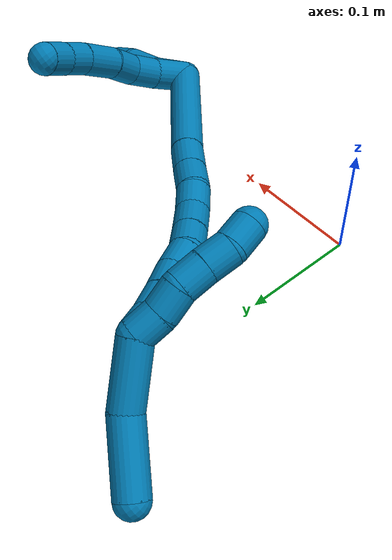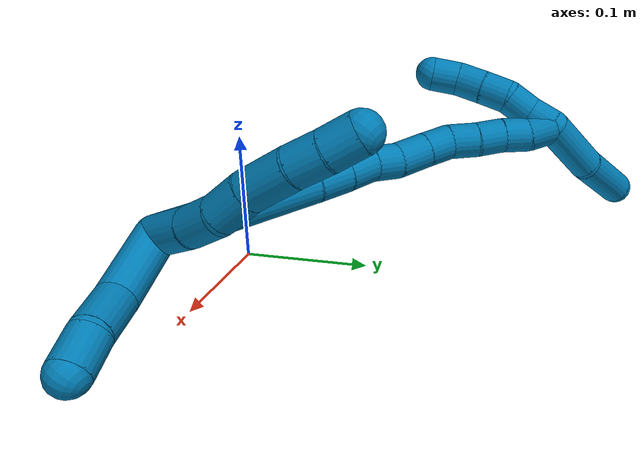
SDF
<sdf version="1.7">
 <world name="default">
  <model name="9">
   <static>0</static>
   <link name="9">
    <collision name="collision-cylinder-e_1_2_8">
     <pose>0.005752 0.010051 -0.010643 -2.38479 0.374406 -0.889279</pose>
     <geometry><cylinder><radius>0.0125</radius><length>0.031458</length></cylinder></geometry>
     <surface>
      <friction><ode><mu>1.16</mu><mu2>1.16</mu2><slip1>0</slip1><slip2>0</slip2></ode></friction>
      <contact><ode><kp>1e+06</kp><kd>1</kd><max_vel>0</max_vel><min_depth>0.001</min_depth></ode></contact>
     </surface>
    </collision>
    <visual name="visual-cylinder-e_1_2_8">
     <pose>0.005752 0.010051 -0.010643 -2.38479 0.374406 -0.889279</pose>
     <geometry><cylinder><radius>0.0125</radius><length>0.031458</length></cylinder></geometry>
     <material><ambient>0 0.490196 0.709804 1</ambient></material>
    </visual>
    <collision name="collision-cylinder-e_2_8_9">
     <pose>0.01559 0.028726 -0.028294 -2.25314 0.352319 -0.715777</pose>
     <geometry><cylinder><radius>0.0125</radius><length>0.023677</length></cylinder></geometry>
     <surface>
      <friction><ode><mu>1.16</mu><mu2>1.16</mu2><slip1>0</slip1><slip2>0</slip2></ode></friction>
      <contact><ode><kp>1e+06</kp><kd>1</kd><max_vel>0</max_vel><min_depth>0.001</min_depth></ode></contact>
     </surface>
    </collision>
    <visual name="visual-cylinder-e_2_8_9">
     <pose>0.01559 0.028726 -0.028294 -2.25314 0.352319 -0.715777</pose>
     <geometry><cylinder><radius>0.0125</radius><length>0.023677</length></cylinder></geometry>
     <material><ambient>0 0.490196 0.709804 1</ambient></material>
    </visual>
    <collision name="collision-cylinder-e_3_9_10">
     <pose>0.022252 0.04769 -0.039909 -1.99007 0.223835 -0.342871</pose>
     <geometry><cylinder><radius>0.0125</radius><length>0.023221</length></cylinder></geometry>
     <surface>
      <friction><ode><mu>1.16</mu><mu2>1.16</mu2><slip1>0</slip1><slip2>0</slip2></ode></friction>
      <contact><ode><kp>1e+06</kp><kd>1</kd><max_vel>0</max_vel><min_depth>0.001</min_depth></ode></contact>
     </surface>
    </collision>
    <visual name="visual-cylinder-e_3_9_10">
     <pose>0.022252 0.04769 -0.039909 -1.99007 0.223835 -0.342871</pose>
     <geometry><cylinder><radius>0.0125</radius><length>0.023221</length></cylinder></geometry>
     <material><ambient>0 0.490196 0.709804 1</ambient></material>
    </visual>
    <collision name="collision-cylinder-e_4_10_11">
     <pose>0.027797 0.07065 -0.052667 -2.14416 0.19504 -0.355459</pose>
     <geometry><cylinder><radius>0.0125</radius><length>0.030624</length></cylinder></geometry>
     <surface>
      <friction><ode><mu>1.16</mu><mu2>1.16</mu2><slip1>0</slip1><slip2>0</slip2></ode></friction>
      <contact><ode><kp>1e+06</kp><kd>1</kd><max_vel>0</max_vel><min_depth>0.001</min_depth></ode></contact>
     </surface>
    </collision>
    <visual name="visual-cylinder-e_4_10_11">
     <pose>0.027797 0.07065 -0.052667 -2.14416 0.19504 -0.355459</pose>
     <geometry><cylinder><radius>0.0125</radius><length>0.030624</length></cylinder></geometry>
     <material><ambient>0 0.490196 0.709804 1</ambient></material>
    </visual>
    <collision name="collision-cylinder-e_5_11_12">
     <pose>0.031437 0.091773 -0.06649 -2.15924 0.065676 -0.122671</pose>
     <geometry><cylinder><radius>0.0125</radius><length>0.020492</length></cylinder></geometry>
     <surface>
      <friction><ode><mu>1.16</mu><mu2>1.16</mu2><slip1>0</slip1><slip2>0</slip2></ode></friction>
      <contact><ode><kp>1e+06</kp><kd>1</kd><max_vel>0</max_vel><min_depth>0.001</min_depth></ode></contact>
     </surface>
    </collision>
    <visual name="visual-cylinder-e_5_11_12">
     <pose>0.031437 0.091773 -0.06649 -2.15924 0.065676 -0.122671</pose>
     <geometry><cylinder><radius>0.0125</radius><length>0.020492</length></cylinder></geometry>
     <material><ambient>0 0.490196 0.709804 1</ambient></material>
    </visual>
    <collision name="collision-cylinder-e_6_12_6">
     <pose>0.032089 0.109185 -0.077265 -2.0908 -0.001993 0.003437</pose>
     <geometry><cylinder><radius>0.0125</radius><length>0.020528</length></cylinder></geometry>
     <surface>
      <friction><ode><mu>1.16</mu><mu2>1.16</mu2><slip1>0</slip1><slip2>0</slip2></ode></friction>
      <contact><ode><kp>1e+06</kp><kd>1</kd><max_vel>0</max_vel><min_depth>0.001</min_depth></ode></contact>
     </surface>
    </collision>
    <visual name="visual-cylinder-e_6_12_6">
     <pose>0.032089 0.109185 -0.077265 -2.0908 -0.001993 0.003437</pose>
     <geometry><cylinder><radius>0.0125</radius><length>0.020528</length></cylinder></geometry>
     <material><ambient>0 0.490196 0.709804 1</ambient></material>
    </visual>
    <collision name="collision-cylinder-e_1_2_13">
     <pose>0.015702 -0.015177 -0.008398 2.07619 0.735707 1.15796</pose>
     <geometry><cylinder><radius>0.0125</radius><length>0.046795</length></cylinder></geometry>
     <surface>
      <friction><ode><mu>1.16</mu><mu2>1.16</mu2><slip1>0</slip1><slip2>0</slip2></ode></friction>
      <contact><ode><kp>1e+06</kp><kd>1</kd><max_vel>0</max_vel><min_depth>0.001</min_depth></ode></contact>
     </surface>
    </collision>
    <visual name="visual-cylinder-e_1_2_13">
     <pose>0.015702 -0.015177 -0.008398 2.07619 0.735707 1.15796</pose>
     <geometry><cylinder><radius>0.0125</radius><length>0.046795</length></cylinder></geometry>
     <material><ambient>0 0.490196 0.709804 1</ambient></material>
    </visual>
    <collision name="collision-cylinder-e_2_13_14">
     <pose>0.043989 -0.03599 -0.022655 2.37572 0.997263 1.86776</pose>
     <geometry><cylinder><radius>0.0125</radius><length>0.029963</length></cylinder></geometry>
     <surface>
      <friction><ode><mu>1.16</mu><mu2>1.16</mu2><slip1>0</slip1><slip2>0</slip2></ode></friction>
      <contact><ode><kp>1e+06</kp><kd>1</kd><max_vel>0</max_vel><min_depth>0.001</min_depth></ode></contact>
     </surface>
    </collision>
    <visual name="visual-cylinder-e_2_13_14">
     <pose>0.043989 -0.03599 -0.022655 2.37572 0.997263 1.86776</pose>
     <geometry><cylinder><radius>0.0125</radius><length>0.029963</length></cylinder></geometry>
     <material><ambient>0 0.490196 0.709804 1</ambient></material>
    </visual>
    <collision name="collision-cylinder-e_3_14_5">
     <pose>0.064368 -0.048742 -0.033376 2.17002 0.735156 1.26029</pose>
     <geometry><cylinder><radius>0.0125</radius><length>0.023242</length></cylinder></geometry>
     <surface>
      <friction><ode><mu>1.16</mu><mu2>1.16</mu2><slip1>0</slip1><slip2>0</slip2></ode></friction>
      <contact><ode><kp>1e+06</kp><kd>1</kd><max_vel>0</max_vel><min_depth>0.001</min_depth></ode></contact>
     </surface>
    </collision>
    <visual name="visual-cylinder-e_3_14_5">
     <pose>0.064368 -0.048742 -0.033376 2.17002 0.735156 1.26029</pose>
     <geometry><cylinder><radius>0.0125</radius><length>0.023242</length></cylinder></geometry>
     <material><ambient>0 0.490196 0.709804 1</ambient></material>
    </visual>
    <collision name="collision-cylinder-e_1_2_15">
     <pose>-0.037079 0.033122 -0.018184 -2.07287 -0.775956 1.20879</pose>
     <geometry><cylinder><radius>0.0125</radius><length>0.105879</length></cylinder></geometry>
     <surface>
      <friction><ode><mu>1.16</mu><mu2>1.16</mu2><slip1>0</slip1><slip2>0</slip2></ode></friction>
      <contact><ode><kp>1e+06</kp><kd>1</kd><max_vel>0</max_vel><min_depth>0.001</min_depth></ode></contact>
     </surface>
    </collision>
    <visual name="visual-cylinder-e_1_2_15">
     <pose>-0.037079 0.033122 -0.018184 -2.07287 -0.775956 1.20879</pose>
     <geometry><cylinder><radius>0.0125</radius><length>0.105879</length></cylinder></geometry>
     <material><ambient>0 0.490196 0.709804 1</ambient></material>
    </visual>
    <collision name="collision-cylinder-e_2_15_16">
     <pose>-0.083402 0.073748 -0.040043 -2.0261 -0.835921 1.23741</pose>
     <geometry><cylinder><radius>0.0125</radius><length>0.024921</length></cylinder></geometry>
     <surface>
      <friction><ode><mu>1.16</mu><mu2>1.16</mu2><slip1>0</slip1><slip2>0</slip2></ode></friction>
      <contact><ode><kp>1e+06</kp><kd>1</kd><max_vel>0</max_vel><min_depth>0.001</min_depth></ode></contact>
     </surface>
    </collision>
    <visual name="visual-cylinder-e_2_15_16">
     <pose>-0.083402 0.073748 -0.040043 -2.0261 -0.835921 1.23741</pose>
     <geometry><cylinder><radius>0.0125</radius><length>0.024921</length></cylinder></geometry>
     <material><ambient>0 0.490196 0.709804 1</ambient></material>
    </visual>
    <collision name="collision-cylinder-e_3_16_17">
     <pose>-0.101119 0.088421 -0.046687 -1.96358 -0.82924 1.16504</pose>
     <geometry><cylinder><radius>0.0125</radius><length>0.022977</length></cylinder></geometry>
     <surface>
      <friction><ode><mu>1.16</mu><mu2>1.16</mu2><slip1>0</slip1><slip2>0</slip2></ode></friction>
      <contact><ode><kp>1e+06</kp><kd>1</kd><max_vel>0</max_vel><min_depth>0.001</min_depth></ode></contact>
     </surface>
    </collision>
    <visual name="visual-cylinder-e_3_16_17">
     <pose>-0.101119 0.088421 -0.046687 -1.96358 -0.82924 1.16504</pose>
     <geometry><cylinder><radius>0.0125</radius><length>0.022977</length></cylinder></geometry>
     <material><ambient>0 0.490196 0.709804 1</ambient></material>
    </visual>
    <collision name="collision-cylinder-e_4_17_18">
     <pose>-0.117279 0.100886 -0.054503 -2.3118 -0.819665 1.557</pose>
     <geometry><cylinder><radius>0.0125</radius><length>0.021037</length></cylinder></geometry>
     <surface>
      <friction><ode><mu>1.16</mu><mu2>1.16</mu2><slip1>0</slip1><slip2>0</slip2></ode></friction>
      <contact><ode><kp>1e+06</kp><kd>1</kd><max_vel>0</max_vel><min_depth>0.001</min_depth></ode></contact>
     </surface>
    </collision>
    <visual name="visual-cylinder-e_4_17_18">
     <pose>-0.117279 0.100886 -0.054503 -2.3118 -0.819665 1.557</pose>
     <geometry><cylinder><radius>0.0125</radius><length>0.021037</length></cylinder></geometry>
     <material><ambient>0 0.490196 0.709804 1</ambient></material>
    </visual>
    <collision name="collision-cylinder-e_5_18_19">
     <pose>-0.132104 0.114657 -0.063884 -2.06219 -0.638674 1.00873</pose>
     <geometry><cylinder><radius>0.0125</radius><length>0.023944</length></cylinder></geometry>
     <surface>
      <friction><ode><mu>1.16</mu><mu2>1.16</mu2><slip1>0</slip1><slip2>0</slip2></ode></friction>
      <contact><ode><kp>1e+06</kp><kd>1</kd><max_vel>0</max_vel><min_depth>0.001</min_depth></ode></contact>
     </surface>
    </collision>
    <visual name="visual-cylinder-e_5_18_19">
     <pose>-0.132104 0.114657 -0.063884 -2.06219 -0.638674 1.00873</pose>
     <geometry><cylinder><radius>0.0125</radius><length>0.023944</length></cylinder></geometry>
     <material><ambient>0 0.490196 0.709804 1</ambient></material>
    </visual>
    <collision name="collision-cylinder-e_6_19_20">
     <pose>-0.145217 0.130251 -0.072552 -2.09677 -0.62793 1.02698</pose>
     <geometry><cylinder><radius>0.0125</radius><length>0.020346</length></cylinder></geometry>
     <surface>
      <friction><ode><mu>1.16</mu><mu2>1.16</mu2><slip1>0</slip1><slip2>0</slip2></ode></friction>
      <contact><ode><kp>1e+06</kp><kd>1</kd><max_vel>0</max_vel><min_depth>0.001</min_depth></ode></contact>
     </surface>
    </collision>
    <visual name="visual-cylinder-e_6_19_20">
     <pose>-0.145217 0.130251 -0.072552 -2.09677 -0.62793 1.02698</pose>
     <geometry><cylinder><radius>0.0125</radius><length>0.020346</length></cylinder></geometry>
     <material><ambient>0 0.490196 0.709804 1</ambient></material>
    </visual>
    <collision name="collision-cylinder-e_7_20_21">
     <pose>-0.155572 0.143512 -0.083807 -2.43003 -0.435737 1.0746</pose>
     <geometry><cylinder><radius>0.0125</radius><length>0.020746</length></cylinder></geometry>
     <surface>
      <friction><ode><mu>1.16</mu><mu2>1.16</mu2><slip1>0</slip1><slip2>0</slip2></ode></friction>
      <contact><ode><kp>1e+06</kp><kd>1</kd><max_vel>0</max_vel><min_depth>0.001</min_depth></ode></contact>
     </surface>
    </collision>
    <visual name="visual-cylinder-e_7_20_21">
     <pose>-0.155572 0.143512 -0.083807 -2.43003 -0.435737 1.0746</pose>
     <geometry><cylinder><radius>0.0125</radius><length>0.020746</length></cylinder></geometry>
     <material><ambient>0 0.490196 0.709804 1</ambient></material>
    </visual>
    <collision name="collision-cylinder-e_8_21_22">
     <pose>-0.164724 0.15615 -0.09692 -2.31567 -0.495283 1.04673</pose>
     <geometry><cylinder><radius>0.0125</radius><length>0.02009</length></cylinder></geometry>
     <surface>
      <friction><ode><mu>1.16</mu><mu2>1.16</mu2><slip1>0</slip1><slip2>0</slip2></ode></friction>
      <contact><ode><kp>1e+06</kp><kd>1</kd><max_vel>0</max_vel><min_depth>0.001</min_depth></ode></contact>
     </surface>
    </collision>
    <visual name="visual-cylinder-e_8_21_22">
     <pose>-0.164724 0.15615 -0.09692 -2.31567 -0.495283 1.04673</pose>
     <geometry><cylinder><radius>0.0125</radius><length>0.02009</length></cylinder></geometry>
     <material><ambient>0 0.490196 0.709804 1</ambient></material>
    </visual>
    <collision name="collision-cylinder-e_9_22_23">
     <pose>-0.173948 0.168274 -0.109918 -2.465 -0.459813 1.17402</pose>
     <geometry><cylinder><radius>0.0125</radius><length>0.020057</length></cylinder></geometry>
     <surface>
      <friction><ode><mu>1.16</mu><mu2>1.16</mu2><slip1>0</slip1><slip2>0</slip2></ode></friction>
      <contact><ode><kp>1e+06</kp><kd>1</kd><max_vel>0</max_vel><min_depth>0.001</min_depth></ode></contact>
     </surface>
    </collision>
    <visual name="visual-cylinder-e_9_22_23">
     <pose>-0.173948 0.168274 -0.109918 -2.465 -0.459813 1.17402</pose>
     <geometry><cylinder><radius>0.0125</radius><length>0.020057</length></cylinder></geometry>
     <material><ambient>0 0.490196 0.709804 1</ambient></material>
    </visual>
    <collision name="collision-cylinder-e_10_23_1">
     <pose>-0.181626 0.18149 -0.122585 -2.2117 -0.328525 0.638281</pose>
     <geometry><cylinder><radius>0.0125</radius><length>0.020003</length></cylinder></geometry>
     <surface>
      <friction><ode><mu>1.16</mu><mu2>1.16</mu2><slip1>0</slip1><slip2>0</slip2></ode></friction>
      <contact><ode><kp>1e+06</kp><kd>1</kd><max_vel>0</max_vel><min_depth>0.001</min_depth></ode></contact>
     </surface>
    </collision>
    <visual name="visual-cylinder-e_10_23_1">
     <pose>-0.181626 0.18149 -0.122585 -2.2117 -0.328525 0.638281</pose>
     <geometry><cylinder><radius>0.0125</radius><length>0.020003</length></cylinder></geometry>
     <material><ambient>0 0.490196 0.709804 1</ambient></material>
    </visual>
    <collision name="collision-cylinder-e_1_1_24">
     <pose>-0.201843 0.185235 -0.144549 2.91009 -0.792516 -2.59948</pose>
     <geometry><cylinder><radius>0.0125</radius><length>0.047717</length></cylinder></geometry>
     <surface>
      <friction><ode><mu>1.16</mu><mu2>1.16</mu2><slip1>0</slip1><slip2>0</slip2></ode></friction>
      <contact><ode><kp>1e+06</kp><kd>1</kd><max_vel>0</max_vel><min_depth>0.001</min_depth></ode></contact>
     </surface>
    </collision>
    <visual name="visual-cylinder-e_1_1_24">
     <pose>-0.201843 0.185235 -0.144549 2.91009 -0.792516 -2.59948</pose>
     <geometry><cylinder><radius>0.0125</radius><length>0.047717</length></cylinder></geometry>
     <material><ambient>0 0.490196 0.709804 1</ambient></material>
    </visual>
    <collision name="collision-cylinder-e_2_24_4">
     <pose>-0.241486 0.181248 -0.173899 3.1306 -1.04821 -3.12258</pose>
     <geometry><cylinder><radius>0.0125</radius><length>0.052283</length></cylinder></geometry>
     <surface>
      <friction><ode><mu>1.16</mu><mu2>1.16</mu2><slip1>0</slip1><slip2>0</slip2></ode></friction>
      <contact><ode><kp>1e+06</kp><kd>1</kd><max_vel>0</max_vel><min_depth>0.001</min_depth></ode></contact>
     </surface>
    </collision>
    <visual name="visual-cylinder-e_2_24_4">
     <pose>-0.241486 0.181248 -0.173899 3.1306 -1.04821 -3.12258</pose>
     <geometry><cylinder><radius>0.0125</radius><length>0.052283</length></cylinder></geometry>
     <material><ambient>0 0.490196 0.709804 1</ambient></material>
    </visual>
    <collision name="collision-cylinder-e_1_1_25">
     <pose>-0.18383 0.188724 -0.118305 0.035584 0.102456 0.001825</pose>
     <geometry><cylinder><radius>0.0125</radius><length>0.02</length></cylinder></geometry>
     <surface>
      <friction><ode><mu>1.16</mu><mu2>1.16</mu2><slip1>0</slip1><slip2>0</slip2></ode></friction>
      <contact><ode><kp>1e+06</kp><kd>1</kd><max_vel>0</max_vel><min_depth>0.001</min_depth></ode></contact>
     </surface>
    </collision>
    <visual name="visual-cylinder-e_1_1_25">
     <pose>-0.18383 0.188724 -0.118305 0.035584 0.102456 0.001825</pose>
     <geometry><cylinder><radius>0.0125</radius><length>0.02</length></cylinder></geometry>
     <material><ambient>0 0.490196 0.709804 1</ambient></material>
    </visual>
    <collision name="collision-cylinder-e_2_25_26">
     <pose>-0.179616 0.188931 -0.098903 -0.059206 0.32486 -0.009705</pose>
     <geometry><cylinder><radius>0.0125</radius><length>0.02</length></cylinder></geometry>
     <surface>
      <friction><ode><mu>1.16</mu><mu2>1.16</mu2><slip1>0</slip1><slip2>0</slip2></ode></friction>
      <contact><ode><kp>1e+06</kp><kd>1</kd><max_vel>0</max_vel><min_depth>0.001</min_depth></ode></contact>
     </surface>
    </collision>
    <visual name="visual-cylinder-e_2_25_26">
     <pose>-0.179616 0.188931 -0.098903 -0.059206 0.32486 -0.009705</pose>
     <geometry><cylinder><radius>0.0125</radius><length>0.02</length></cylinder></geometry>
     <material><ambient>0 0.490196 0.709804 1</ambient></material>
    </visual>
    <collision name="collision-cylinder-e_3_26_27">
     <pose>-0.175399 0.187409 -0.079716 0.210942 0.102695 0.010881</pose>
     <geometry><cylinder><radius>0.0125</radius><length>0.02</length></cylinder></geometry>
     <surface>
      <friction><ode><mu>1.16</mu><mu2>1.16</mu2><slip1>0</slip1><slip2>0</slip2></ode></friction>
      <contact><ode><kp>1e+06</kp><kd>1</kd><max_vel>0</max_vel><min_depth>0.001</min_depth></ode></contact>
     </surface>
    </collision>
    <visual name="visual-cylinder-e_3_26_27">
     <pose>-0.175399 0.187409 -0.079716 0.210942 0.102695 0.010881</pose>
     <geometry><cylinder><radius>0.0125</radius><length>0.02</length></cylinder></geometry>
     <material><ambient>0 0.490196 0.709804 1</ambient></material>
    </visual>
    <collision name="collision-cylinder-e_4_27_28">
     <pose>-0.173978 0.183076 -0.060253 0.227082 0.039617 0.004518</pose>
     <geometry><cylinder><radius>0.0125</radius><length>0.02</length></cylinder></geometry>
     <surface>
      <friction><ode><mu>1.16</mu><mu2>1.16</mu2><slip1>0</slip1><slip2>0</slip2></ode></friction>
      <contact><ode><kp>1e+06</kp><kd>1</kd><max_vel>0</max_vel><min_depth>0.001</min_depth></ode></contact>
     </surface>
    </collision>
    <visual name="visual-cylinder-e_4_27_28">
     <pose>-0.173978 0.183076 -0.060253 0.227082 0.039617 0.004518</pose>
     <geometry><cylinder><radius>0.0125</radius><length>0.02</length></cylinder></geometry>
     <material><ambient>0 0.490196 0.709804 1</ambient></material>
    </visual>
    <collision name="collision-cylinder-e_5_28_3">
     <pose>-0.170634 0.177011 -0.041757 0.410724 0.299183 0.062768</pose>
     <geometry><cylinder><radius>0.0125</radius><length>0.02</length></cylinder></geometry>
     <surface>
      <friction><ode><mu>1.16</mu><mu2>1.16</mu2><slip1>0</slip1><slip2>0</slip2></ode></friction>
      <contact><ode><kp>1e+06</kp><kd>1</kd><max_vel>0</max_vel><min_depth>0.001</min_depth></ode></contact>
     </surface>
    </collision>
    <visual name="visual-cylinder-e_5_28_3">
     <pose>-0.170634 0.177011 -0.041757 0.410724 0.299183 0.062768</pose>
     <geometry><cylinder><radius>0.0125</radius><length>0.02</length></cylinder></geometry>
     <material><ambient>0 0.490196 0.709804 1</ambient></material>
    </visual>
    <collision name="collision-sphere-3">
     <pose>-0.167687 0.173196 -0.032996 0 -0 0</pose>
     <geometry><sphere><radius>0.0125</radius></sphere></geometry>
     <surface>
      <friction><ode><mu>1.16</mu><mu2>1.16</mu2><slip1>0</slip1><slip2>0</slip2></ode></friction>
      <contact><ode><kp>1e+06</kp><kd>1</kd><max_vel>0</max_vel><min_depth>0.001</min_depth></ode></contact>
     </surface>
    </collision>
    <visual name="visual-sphere-3">
     <pose>-0.167687 0.173196 -0.032996 0 -0 0</pose>
     <geometry><sphere><radius>0.0125</radius></sphere></geometry>
     <material><ambient>0 0.490196 0.709804 1</ambient></material>
    </visual>
    <collision name="collision-sphere-28">
     <pose>-0.173581 0.180827 -0.050518 0 -0 0</pose>
     <geometry><sphere><radius>0.0125</radius></sphere></geometry>
     <surface>
      <friction><ode><mu>1.16</mu><mu2>1.16</mu2><slip1>0</slip1><slip2>0</slip2></ode></friction>
      <contact><ode><kp>1e+06</kp><kd>1</kd><max_vel>0</max_vel><min_depth>0.001</min_depth></ode></contact>
     </surface>
    </collision>
    <visual name="visual-sphere-28">
     <pose>-0.173581 0.180827 -0.050518 0 -0 0</pose>
     <geometry><sphere><radius>0.0125</radius></sphere></geometry>
     <material><ambient>0 0.490196 0.709804 1</ambient></material>
    </visual>
    <collision name="collision-sphere-27">
     <pose>-0.174374 0.185326 -0.069989 0 -0 0</pose>
     <geometry><sphere><radius>0.0125</radius></sphere></geometry>
     <surface>
      <friction><ode><mu>1.16</mu><mu2>1.16</mu2><slip1>0</slip1><slip2>0</slip2></ode></friction>
      <contact><ode><kp>1e+06</kp><kd>1</kd><max_vel>0</max_vel><min_depth>0.001</min_depth></ode></contact>
     </surface>
    </collision>
    <visual name="visual-sphere-27">
     <pose>-0.174374 0.185326 -0.069989 0 -0 0</pose>
     <geometry><sphere><radius>0.0125</radius></sphere></geometry>
     <material><ambient>0 0.490196 0.709804 1</ambient></material>
    </visual>
    <collision name="collision-sphere-26">
     <pose>-0.176424 0.189491 -0.089443 0 -0 0</pose>
     <geometry><sphere><radius>0.0125</radius></sphere></geometry>
     <surface>
      <friction><ode><mu>1.16</mu><mu2>1.16</mu2><slip1>0</slip1><slip2>0</slip2></ode></friction>
      <contact><ode><kp>1e+06</kp><kd>1</kd><max_vel>0</max_vel><min_depth>0.001</min_depth></ode></contact>
     </surface>
    </collision>
    <visual name="visual-sphere-26">
     <pose>-0.176424 0.189491 -0.089443 0 -0 0</pose>
     <geometry><sphere><radius>0.0125</radius></sphere></geometry>
     <material><ambient>0 0.490196 0.709804 1</ambient></material>
    </visual>
    <collision name="collision-sphere-25">
     <pose>-0.182807 0.18837 -0.108363 0 -0 0</pose>
     <geometry><sphere><radius>0.0125</radius></sphere></geometry>
     <surface>
      <friction><ode><mu>1.16</mu><mu2>1.16</mu2><slip1>0</slip1><slip2>0</slip2></ode></friction>
      <contact><ode><kp>1e+06</kp><kd>1</kd><max_vel>0</max_vel><min_depth>0.001</min_depth></ode></contact>
     </surface>
    </collision>
    <visual name="visual-sphere-25">
     <pose>-0.182807 0.18837 -0.108363 0 -0 0</pose>
     <geometry><sphere><radius>0.0125</radius></sphere></geometry>
     <material><ambient>0 0.490196 0.709804 1</ambient></material>
    </visual>
    <collision name="collision-sphere-4">
     <pose>-0.264138 0.181105 -0.186946 0 -0 0</pose>
     <geometry><sphere><radius>0.0125</radius></sphere></geometry>
     <surface>
      <friction><ode><mu>1.16</mu><mu2>1.16</mu2><slip1>0</slip1><slip2>0</slip2></ode></friction>
      <contact><ode><kp>1e+06</kp><kd>1</kd><max_vel>0</max_vel><min_depth>0.001</min_depth></ode></contact>
     </surface>
    </collision>
    <visual name="visual-sphere-4">
     <pose>-0.264138 0.181105 -0.186946 0 -0 0</pose>
     <geometry><sphere><radius>0.0125</radius></sphere></geometry>
     <material><ambient>0 0.490196 0.709804 1</ambient></material>
    </visual>
    <collision name="collision-sphere-24">
     <pose>-0.218833 0.181392 -0.160852 0 -0 0</pose>
     <geometry><sphere><radius>0.0125</radius></sphere></geometry>
     <surface>
      <friction><ode><mu>1.16</mu><mu2>1.16</mu2><slip1>0</slip1><slip2>0</slip2></ode></friction>
      <contact><ode><kp>1e+06</kp><kd>1</kd><max_vel>0</max_vel><min_depth>0.001</min_depth></ode></contact>
     </surface>
    </collision>
    <visual name="visual-sphere-24">
     <pose>-0.218833 0.181392 -0.160852 0 -0 0</pose>
     <geometry><sphere><radius>0.0125</radius></sphere></geometry>
     <material><ambient>0 0.490196 0.709804 1</ambient></material>
    </visual>
    <collision name="collision-sphere-1">
     <pose>-0.184853 0.189078 -0.128246 0 -0 0</pose>
     <geometry><sphere><radius>0.0125</radius></sphere></geometry>
     <surface>
      <friction><ode><mu>1.16</mu><mu2>1.16</mu2><slip1>0</slip1><slip2>0</slip2></ode></friction>
      <contact><ode><kp>1e+06</kp><kd>1</kd><max_vel>0</max_vel><min_depth>0.001</min_depth></ode></contact>
     </surface>
    </collision>
    <visual name="visual-sphere-1">
     <pose>-0.184853 0.189078 -0.128246 0 -0 0</pose>
     <geometry><sphere><radius>0.0125</radius></sphere></geometry>
     <material><ambient>0 0.490196 0.709804 1</ambient></material>
    </visual>
    <collision name="collision-sphere-23">
     <pose>-0.178399 0.173901 -0.116925 0 -0 0</pose>
     <geometry><sphere><radius>0.0125</radius></sphere></geometry>
     <surface>
      <friction><ode><mu>1.16</mu><mu2>1.16</mu2><slip1>0</slip1><slip2>0</slip2></ode></friction>
      <contact><ode><kp>1e+06</kp><kd>1</kd><max_vel>0</max_vel><min_depth>0.001</min_depth></ode></contact>
     </surface>
    </collision>
    <visual name="visual-sphere-23">
     <pose>-0.178399 0.173901 -0.116925 0 -0 0</pose>
     <geometry><sphere><radius>0.0125</radius></sphere></geometry>
     <material><ambient>0 0.490196 0.709804 1</ambient></material>
    </visual>
    <collision name="collision-sphere-22">
     <pose>-0.169498 0.162647 -0.102911 0 -0 0</pose>
     <geometry><sphere><radius>0.0125</radius></sphere></geometry>
     <surface>
      <friction><ode><mu>1.16</mu><mu2>1.16</mu2><slip1>0</slip1><slip2>0</slip2></ode></friction>
      <contact><ode><kp>1e+06</kp><kd>1</kd><max_vel>0</max_vel><min_depth>0.001</min_depth></ode></contact>
     </surface>
    </collision>
    <visual name="visual-sphere-22">
     <pose>-0.169498 0.162647 -0.102911 0 -0 0</pose>
     <geometry><sphere><radius>0.0125</radius></sphere></geometry>
     <material><ambient>0 0.490196 0.709804 1</ambient></material>
    </visual>
    <collision name="collision-sphere-21">
     <pose>-0.15995 0.149653 -0.090929 0 -0 0</pose>
     <geometry><sphere><radius>0.0125</radius></sphere></geometry>
     <surface>
      <friction><ode><mu>1.16</mu><mu2>1.16</mu2><slip1>0</slip1><slip2>0</slip2></ode></friction>
      <contact><ode><kp>1e+06</kp><kd>1</kd><max_vel>0</max_vel><min_depth>0.001</min_depth></ode></contact>
     </surface>
    </collision>
    <visual name="visual-sphere-21">
     <pose>-0.15995 0.149653 -0.090929 0 -0 0</pose>
     <geometry><sphere><radius>0.0125</radius></sphere></geometry>
     <material><ambient>0 0.490196 0.709804 1</ambient></material>
    </visual>
    <collision name="collision-sphere-12">
     <pose>0.032109 0.100277 -0.072165 0 -0 0</pose>
     <geometry><sphere><radius>0.0125</radius></sphere></geometry>
     <surface>
      <friction><ode><mu>1.16</mu><mu2>1.16</mu2><slip1>0</slip1><slip2>0</slip2></ode></friction>
      <contact><ode><kp>1e+06</kp><kd>1</kd><max_vel>0</max_vel><min_depth>0.001</min_depth></ode></contact>
     </surface>
    </collision>
    <visual name="visual-sphere-12">
     <pose>0.032109 0.100277 -0.072165 0 -0 0</pose>
     <geometry><sphere><radius>0.0125</radius></sphere></geometry>
     <material><ambient>0 0.490196 0.709804 1</ambient></material>
    </visual>
    <collision name="collision-sphere-11">
     <pose>0.030765 0.083269 -0.060815 0 -0 0</pose>
     <geometry><sphere><radius>0.0125</radius></sphere></geometry>
     <surface>
      <friction><ode><mu>1.16</mu><mu2>1.16</mu2><slip1>0</slip1><slip2>0</slip2></ode></friction>
      <contact><ode><kp>1e+06</kp><kd>1</kd><max_vel>0</max_vel><min_depth>0.001</min_depth></ode></contact>
     </surface>
    </collision>
    <visual name="visual-sphere-11">
     <pose>0.030765 0.083269 -0.060815 0 -0 0</pose>
     <geometry><sphere><radius>0.0125</radius></sphere></geometry>
     <material><ambient>0 0.490196 0.709804 1</ambient></material>
    </visual>
    <collision name="collision-sphere-10">
     <pose>0.02483 0.05803 -0.044518 0 -0 0</pose>
     <geometry><sphere><radius>0.0125</radius></sphere></geometry>
     <surface>
      <friction><ode><mu>1.16</mu><mu2>1.16</mu2><slip1>0</slip1><slip2>0</slip2></ode></friction>
      <contact><ode><kp>1e+06</kp><kd>1</kd><max_vel>0</max_vel><min_depth>0.001</min_depth></ode></contact>
     </surface>
    </collision>
    <visual name="visual-sphere-10">
     <pose>0.02483 0.05803 -0.044518 0 -0 0</pose>
     <geometry><sphere><radius>0.0125</radius></sphere></geometry>
     <material><ambient>0 0.490196 0.709804 1</ambient></material>
    </visual>
    <collision name="collision-sphere-9">
     <pose>0.019675 0.03735 -0.035301 0 -0 0</pose>
     <geometry><sphere><radius>0.0125</radius></sphere></geometry>
     <surface>
      <friction><ode><mu>1.16</mu><mu2>1.16</mu2><slip1>0</slip1><slip2>0</slip2></ode></friction>
      <contact><ode><kp>1e+06</kp><kd>1</kd><max_vel>0</max_vel><min_depth>0.001</min_depth></ode></contact>
     </surface>
    </collision>
    <visual name="visual-sphere-9">
     <pose>0.019675 0.03735 -0.035301 0 -0 0</pose>
     <geometry><sphere><radius>0.0125</radius></sphere></geometry>
     <material><ambient>0 0.490196 0.709804 1</ambient></material>
    </visual>
    <collision name="collision-sphere-2">
     <geometry><sphere><radius>0.0125</radius></sphere></geometry>
     <surface>
      <friction><ode><mu>1.16</mu><mu2>1.16</mu2><slip1>0</slip1><slip2>0</slip2></ode></friction>
      <contact><ode><kp>1e+06</kp><kd>1</kd><max_vel>0</max_vel><min_depth>0.001</min_depth></ode></contact>
     </surface>
    </collision>
    <visual name="visual-sphere-2">
     <geometry><sphere><radius>0.0125</radius></sphere></geometry>
     <material><ambient>0 0.490196 0.709804 1</ambient></material>
    </visual>
    <collision name="collision-sphere-19">
     <pose>-0.139241 0.123132 -0.068419 0 -0 0</pose>
     <geometry><sphere><radius>0.0125</radius></sphere></geometry>
     <surface>
      <friction><ode><mu>1.16</mu><mu2>1.16</mu2><slip1>0</slip1><slip2>0</slip2></ode></friction>
      <contact><ode><kp>1e+06</kp><kd>1</kd><max_vel>0</max_vel><min_depth>0.001</min_depth></ode></contact>
     </surface>
    </collision>
    <visual name="visual-sphere-19">
     <pose>-0.139241 0.123132 -0.068419 0 -0 0</pose>
     <geometry><sphere><radius>0.0125</radius></sphere></geometry>
     <material><ambient>0 0.490196 0.709804 1</ambient></material>
    </visual>
    <collision name="collision-sphere-8">
     <pose>0.011505 0.020103 -0.021287 0 -0 0</pose>
     <geometry><sphere><radius>0.0125</radius></sphere></geometry>
     <surface>
      <friction><ode><mu>1.16</mu><mu2>1.16</mu2><slip1>0</slip1><slip2>0</slip2></ode></friction>
      <contact><ode><kp>1e+06</kp><kd>1</kd><max_vel>0</max_vel><min_depth>0.001</min_depth></ode></contact>
     </surface>
    </collision>
    <visual name="visual-sphere-8">
     <pose>0.011505 0.020103 -0.021287 0 -0 0</pose>
     <geometry><sphere><radius>0.0125</radius></sphere></geometry>
     <material><ambient>0 0.490196 0.709804 1</ambient></material>
    </visual>
    <collision name="collision-sphere-6">
     <pose>0.032069 0.118092 -0.082365 0 -0 0</pose>
     <geometry><sphere><radius>0.0125</radius></sphere></geometry>
     <surface>
      <friction><ode><mu>1.16</mu><mu2>1.16</mu2><slip1>0</slip1><slip2>0</slip2></ode></friction>
      <contact><ode><kp>1e+06</kp><kd>1</kd><max_vel>0</max_vel><min_depth>0.001</min_depth></ode></contact>
     </surface>
    </collision>
    <visual name="visual-sphere-6">
     <pose>0.032069 0.118092 -0.082365 0 -0 0</pose>
     <geometry><sphere><radius>0.0125</radius></sphere></geometry>
     <material><ambient>0 0.490196 0.709804 1</ambient></material>
    </visual>
    <collision name="collision-sphere-13">
     <pose>0.031405 -0.030355 -0.016796 0 -0 0</pose>
     <geometry><sphere><radius>0.0125</radius></sphere></geometry>
     <surface>
      <friction><ode><mu>1.16</mu><mu2>1.16</mu2><slip1>0</slip1><slip2>0</slip2></ode></friction>
      <contact><ode><kp>1e+06</kp><kd>1</kd><max_vel>0</max_vel><min_depth>0.001</min_depth></ode></contact>
     </surface>
    </collision>
    <visual name="visual-sphere-13">
     <pose>0.031405 -0.030355 -0.016796 0 -0 0</pose>
     <geometry><sphere><radius>0.0125</radius></sphere></geometry>
     <material><ambient>0 0.490196 0.709804 1</ambient></material>
    </visual>
    <collision name="collision-sphere-14">
     <pose>0.056573 -0.041624 -0.028515 0 -0 0</pose>
     <geometry><sphere><radius>0.0125</radius></sphere></geometry>
     <surface>
      <friction><ode><mu>1.16</mu><mu2>1.16</mu2><slip1>0</slip1><slip2>0</slip2></ode></friction>
      <contact><ode><kp>1e+06</kp><kd>1</kd><max_vel>0</max_vel><min_depth>0.001</min_depth></ode></contact>
     </surface>
    </collision>
    <visual name="visual-sphere-14">
     <pose>0.056573 -0.041624 -0.028515 0 -0 0</pose>
     <geometry><sphere><radius>0.0125</radius></sphere></geometry>
     <material><ambient>0 0.490196 0.709804 1</ambient></material>
    </visual>
    <collision name="collision-sphere-5">
     <pose>0.072162 -0.05586 -0.038238 0 -0 0</pose>
     <geometry><sphere><radius>0.0125</radius></sphere></geometry>
     <surface>
      <friction><ode><mu>1.16</mu><mu2>1.16</mu2><slip1>0</slip1><slip2>0</slip2></ode></friction>
      <contact><ode><kp>1e+06</kp><kd>1</kd><max_vel>0</max_vel><min_depth>0.001</min_depth></ode></contact>
     </surface>
    </collision>
    <visual name="visual-sphere-5">
     <pose>0.072162 -0.05586 -0.038238 0 -0 0</pose>
     <geometry><sphere><radius>0.0125</radius></sphere></geometry>
     <material><ambient>0 0.490196 0.709804 1</ambient></material>
    </visual>
    <collision name="collision-sphere-15">
     <pose>-0.074158 0.066245 -0.036369 0 -0 0</pose>
     <geometry><sphere><radius>0.0125</radius></sphere></geometry>
     <surface>
      <friction><ode><mu>1.16</mu><mu2>1.16</mu2><slip1>0</slip1><slip2>0</slip2></ode></friction>
      <contact><ode><kp>1e+06</kp><kd>1</kd><max_vel>0</max_vel><min_depth>0.001</min_depth></ode></contact>
     </surface>
    </collision>
    <visual name="visual-sphere-15">
     <pose>-0.074158 0.066245 -0.036369 0 -0 0</pose>
     <geometry><sphere><radius>0.0125</radius></sphere></geometry>
     <material><ambient>0 0.490196 0.709804 1</ambient></material>
    </visual>
    <collision name="collision-sphere-16">
     <pose>-0.092647 0.081252 -0.043716 0 -0 0</pose>
     <geometry><sphere><radius>0.0125</radius></sphere></geometry>
     <surface>
      <friction><ode><mu>1.16</mu><mu2>1.16</mu2><slip1>0</slip1><slip2>0</slip2></ode></friction>
      <contact><ode><kp>1e+06</kp><kd>1</kd><max_vel>0</max_vel><min_depth>0.001</min_depth></ode></contact>
     </surface>
    </collision>
    <visual name="visual-sphere-16">
     <pose>-0.092647 0.081252 -0.043716 0 -0 0</pose>
     <geometry><sphere><radius>0.0125</radius></sphere></geometry>
     <material><ambient>0 0.490196 0.709804 1</ambient></material>
    </visual>
    <collision name="collision-sphere-17">
     <pose>-0.109591 0.09559 -0.049657 0 -0 0</pose>
     <geometry><sphere><radius>0.0125</radius></sphere></geometry>
     <surface>
      <friction><ode><mu>1.16</mu><mu2>1.16</mu2><slip1>0</slip1><slip2>0</slip2></ode></friction>
      <contact><ode><kp>1e+06</kp><kd>1</kd><max_vel>0</max_vel><min_depth>0.001</min_depth></ode></contact>
     </surface>
    </collision>
    <visual name="visual-sphere-17">
     <pose>-0.109591 0.09559 -0.049657 0 -0 0</pose>
     <geometry><sphere><radius>0.0125</radius></sphere></geometry>
     <material><ambient>0 0.490196 0.709804 1</ambient></material>
    </visual>
    <collision name="collision-sphere-18">
     <pose>-0.124967 0.106182 -0.059348 0 -0 0</pose>
     <geometry><sphere><radius>0.0125</radius></sphere></geometry>
     <surface>
      <friction><ode><mu>1.16</mu><mu2>1.16</mu2><slip1>0</slip1><slip2>0</slip2></ode></friction>
      <contact><ode><kp>1e+06</kp><kd>1</kd><max_vel>0</max_vel><min_depth>0.001</min_depth></ode></contact>
     </surface>
    </collision>
    <visual name="visual-sphere-18">
     <pose>-0.124967 0.106182 -0.059348 0 -0 0</pose>
     <geometry><sphere><radius>0.0125</radius></sphere></geometry>
     <material><ambient>0 0.490196 0.709804 1</ambient></material>
    </visual>
    <collision name="collision-sphere-20">
     <pose>-0.151193 0.137371 -0.076685 0 -0 0</pose>
     <geometry><sphere><radius>0.0125</radius></sphere></geometry>
     <surface>
      <friction><ode><mu>1.16</mu><mu2>1.16</mu2><slip1>0</slip1><slip2>0</slip2></ode></friction>
      <contact><ode><kp>1e+06</kp><kd>1</kd><max_vel>0</max_vel><min_depth>0.001</min_depth></ode></contact>
     </surface>
    </collision>
    <visual name="visual-sphere-20">
     <pose>-0.151193 0.137371 -0.076685 0 -0 0</pose>
     <geometry><sphere><radius>0.0125</radius></sphere></geometry>
     <material><ambient>0 0.490196 0.709804 1</ambient></material>
    </visual>
    <inertial>
     <pose>-0.08497 0.093733 -0.065066 0 -0 0</pose>
     <mass>0.75</mass>
     <inertia><ixx>0.000108</ixx><ixy>0</ixy><ixz>0</ixz><iyy>0.000174</iyy><iyz>0</iyz><izz>-5e-06</izz></inertia>
    </inertial>
   </link>
   <pose>0.172193 0.026323 0.091899 1.08051 -0.414185 -0.045241</pose>
  </model>
 </world>
</sdf>
